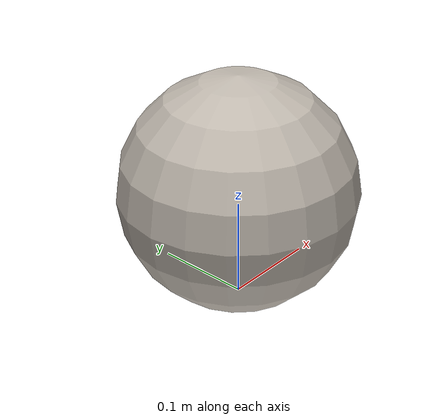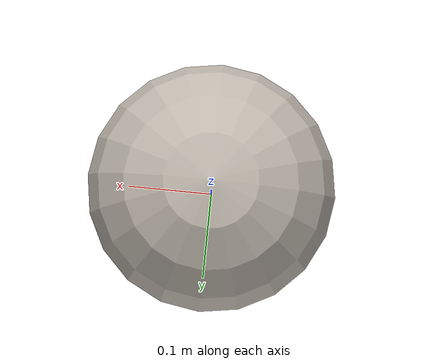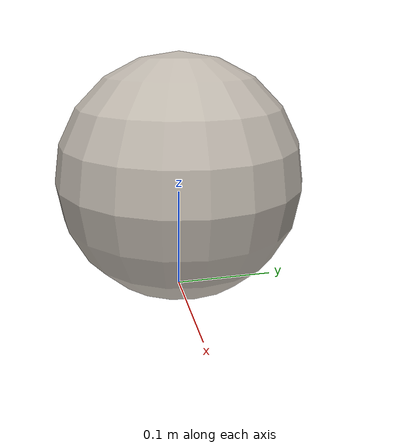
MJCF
<?xml version="1.0" encoding="UTF-8"?>
<mujoco model="soccer_ball">
  <asset>
    <texture name="soccer_ball" type="cube"
      fileup="leg_soccer/soccer_assets/soccer_scene/soccer_ball/up.png"
      filedown="leg_soccer/soccer_assets/soccer_scene/soccer_ball/down.png"
      fileleft="leg_soccer/soccer_assets/soccer_scene/soccer_ball/left.png"
      fileright="leg_soccer/soccer_assets/soccer_scene/soccer_ball/right.png"
      filefront="leg_soccer/soccer_assets/soccer_scene/soccer_ball/front.png"
      fileback="leg_soccer/soccer_assets/soccer_scene/soccer_ball/back.png"/>
    <material name="soccer_mat" texture="soccer_ball" shininess="0.4" specular="0.4"/>
  </asset>

  <worldbody>
    <!-- FIFA regulation parameters for a size 5 ball -->
    <body name="soccer_ball" pos="0 0 0.117">
      <freejoint/>
      <geom
        name="ball_geom"
        type="sphere"
        size="0.117"
        mass="0.45"
        condim="6"
        priority="1"
        friction="0.7 0.05 0.04"
        solref="0.02 0.4"
        material="soccer_mat"/>
    </body>
  </worldbody>

</mujoco>
